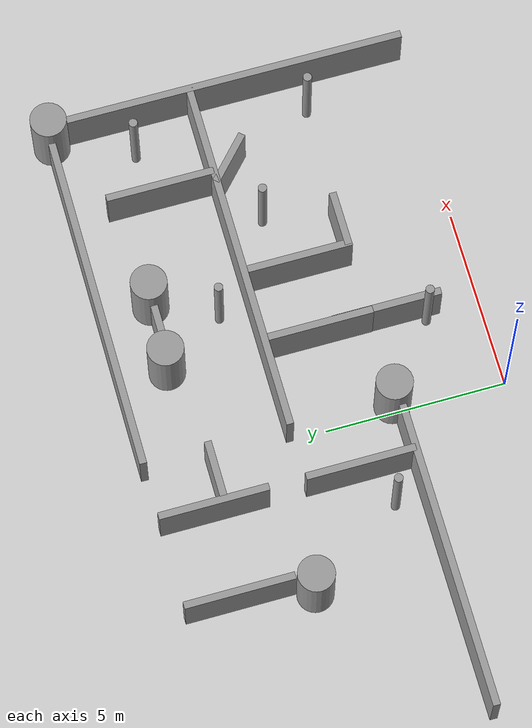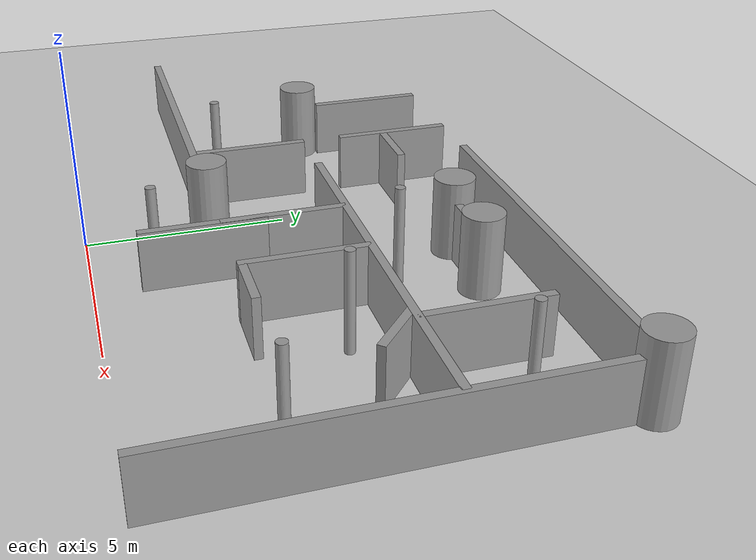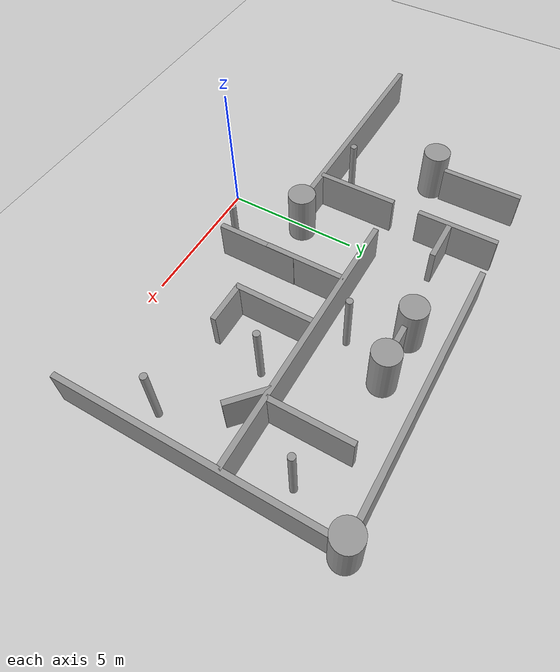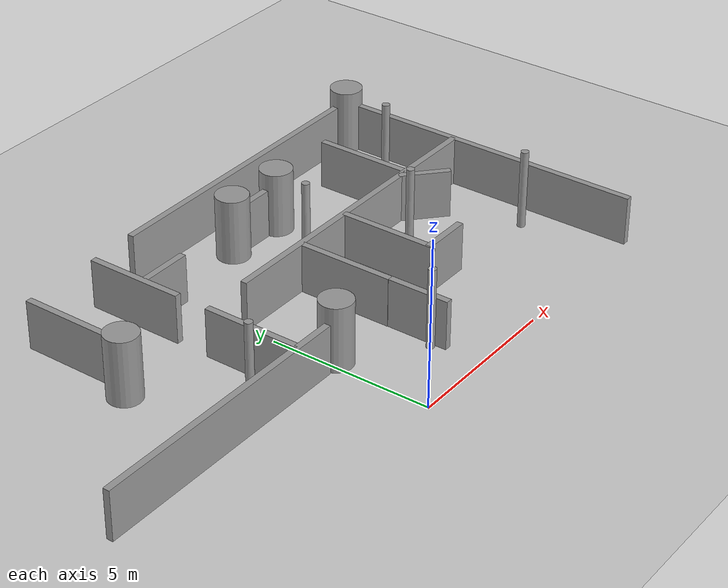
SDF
<sdf version="1.7">
 <world name="default">
  <model name="ground_plane">
   <static>1</static>
   <link name="link">
    <collision name="collision">
     <geometry><plane><normal>0 0 1</normal><size>100 100</size></plane></geometry>
     <surface><friction><ode><mu>100</mu><mu2>50</mu2></ode></friction></surface>
    </collision>
    <visual name="visual">
     <cast_shadows>0</cast_shadows>
     <geometry><plane><normal>0 0 1</normal><size>100 100</size></plane></geometry>
     <material>
      <script><uri>file://media/materials/scripts/gazebo.material</uri><name>Gazebo/Grey</name></script>
     </material>
    </visual>
   </link>
  </model>
  <model name="wall_10x3">
   <link name="link">
    <inertial>
     <mass>1</mass>
     <inertia>
      <ixx>0.166667</ixx>
      <ixy>0</ixy>
      <ixz>0</ixz>
      <iyy>0.166667</iyy>
      <iyz>0</iyz>
      <izz>0.166667</izz>
     </inertia>
    </inertial>
    <visual name="visual">
     <geometry><box><size>10 0.2 1.5</size></box></geometry>
     <material>
      <script><name>Gazebo/Grey</name><uri>file://media/materials/scripts/gazebo.material</uri></script>
      <shader type="pixel"><normal_map>__default__</normal_map></shader>
      <ambient>0.3 0.3 0.3 1</ambient>
      <diffuse>0.7 0.7 0.7 1</diffuse>
      <specular>0.01 0.01 0.01 1</specular>
      <emissive>0 0 0 1</emissive>
     </material>
    </visual>
    <collision name="collision">
     <geometry><box><size>10 0.2 1.5</size></box></geometry>
     <surface>
      <friction>
       <ode><mu>1</mu><mu2>1</mu2><fdir1>0 0 0</fdir1><slip1>0</slip1><slip2>0</slip2></ode>
       <torsional>
        <coefficient>1</coefficient>
        <patch_radius>0</patch_radius>
        <surface_radius>0</surface_radius>
        <use_patch_radius>1</use_patch_radius>
        <ode><slip>0</slip></ode>
       </torsional>
      </friction>
      <bounce><restitution_coefficient>0</restitution_coefficient><threshold>1e+06</threshold></bounce>
      <contact>
       <collide_without_contact>0</collide_without_contact>
       <collide_without_contact_bitmask>1</collide_without_contact_bitmask>
       <collide_bitmask>1</collide_bitmask>
       <ode>
        <soft_cfm>0</soft_cfm>
        <soft_erp>0.2</soft_erp>
        <kp>1e+13</kp>
        <kd>1</kd>
        <max_vel>0.01</max_vel>
        <min_depth>0</min_depth>
       </ode>
       <bullet>
        <split_impulse>1</split_impulse>
        <split_impulse_penetration_threshold>-0.01</split_impulse_penetration_threshold>
        <soft_cfm>0</soft_cfm>
        <soft_erp>0.2</soft_erp>
        <kp>1e+13</kp>
        <kd>1</kd>
       </bullet>
      </contact>
     </surface>
    </collision>
   </link>
   <static>1</static>
   <pose>5 10 0.75 0 -0 0</pose>
  </model>
  <model name="wall_10x3_clone_2">
   <link name="link">
    <inertial>
     <mass>1</mass>
     <inertia>
      <ixx>0.166667</ixx>
      <ixy>0</ixy>
      <ixz>0</ixz>
      <iyy>0.166667</iyy>
      <iyz>0</iyz>
      <izz>0.166667</izz>
     </inertia>
    </inertial>
    <visual name="visual">
     <geometry><box><size>10 0.2 1.5</size></box></geometry>
     <material>
      <script><name>Gazebo/Grey</name><uri>file://media/materials/scripts/gazebo.material</uri></script>
      <shader type="pixel"><normal_map>__default__</normal_map></shader>
      <ambient>0.3 0.3 0.3 1</ambient>
      <diffuse>0.7 0.7 0.7 1</diffuse>
      <specular>0.01 0.01 0.01 1</specular>
      <emissive>0 0 0 1</emissive>
     </material>
    </visual>
    <collision name="collision">
     <geometry><box><size>10 0.2 1.5</size></box></geometry>
     <surface>
      <friction>
       <ode><mu>1</mu><mu2>1</mu2><fdir1>0 0 0</fdir1><slip1>0</slip1><slip2>0</slip2></ode>
       <torsional>
        <coefficient>1</coefficient>
        <patch_radius>0</patch_radius>
        <surface_radius>0</surface_radius>
        <use_patch_radius>1</use_patch_radius>
        <ode><slip>0</slip></ode>
       </torsional>
      </friction>
      <bounce><restitution_coefficient>0</restitution_coefficient><threshold>1e+06</threshold></bounce>
      <contact>
       <collide_without_contact>0</collide_without_contact>
       <collide_without_contact_bitmask>1</collide_without_contact_bitmask>
       <collide_bitmask>1</collide_bitmask>
       <ode>
        <soft_cfm>0</soft_cfm>
        <soft_erp>0.2</soft_erp>
        <kp>1e+13</kp>
        <kd>1</kd>
        <max_vel>0.01</max_vel>
        <min_depth>0</min_depth>
       </ode>
       <bullet>
        <split_impulse>1</split_impulse>
        <split_impulse_penetration_threshold>-0.01</split_impulse_penetration_threshold>
        <soft_cfm>0</soft_cfm>
        <soft_erp>0.2</soft_erp>
        <kp>1e+13</kp>
        <kd>1</kd>
       </bullet>
      </contact>
     </surface>
    </collision>
   </link>
   <static>1</static>
   <pose>5 6 0.75 0 -0 0</pose>
  </model>
  <model name="wall_10x3_clone_3_clone_1">
   <link name="link">
    <inertial>
     <mass>1</mass>
     <inertia>
      <ixx>0.166667</ixx>
      <ixy>0</ixy>
      <ixz>0</ixz>
      <iyy>0.166667</iyy>
      <iyz>0</iyz>
      <izz>0.166667</izz>
     </inertia>
    </inertial>
    <visual name="visual">
     <geometry><box><size>10 0.2 1.5</size></box></geometry>
     <material>
      <script><name>Gazebo/Grey</name><uri>file://media/materials/scripts/gazebo.material</uri></script>
      <shader type="pixel"><normal_map>__default__</normal_map></shader>
      <ambient>0.3 0.3 0.3 1</ambient>
      <diffuse>0.7 0.7 0.7 1</diffuse>
      <specular>0.01 0.01 0.01 1</specular>
      <emissive>0 0 0 1</emissive>
     </material>
    </visual>
    <collision name="collision">
     <geometry><box><size>10 0.2 1.5</size></box></geometry>
     <surface>
      <friction>
       <ode><mu>1</mu><mu2>1</mu2><fdir1>0 0 0</fdir1><slip1>0</slip1><slip2>0</slip2></ode>
       <torsional>
        <coefficient>1</coefficient>
        <patch_radius>0</patch_radius>
        <surface_radius>0</surface_radius>
        <use_patch_radius>1</use_patch_radius>
        <ode><slip>0</slip></ode>
       </torsional>
      </friction>
      <bounce><restitution_coefficient>0</restitution_coefficient><threshold>1e+06</threshold></bounce>
      <contact>
       <collide_without_contact>0</collide_without_contact>
       <collide_without_contact_bitmask>1</collide_without_contact_bitmask>
       <collide_bitmask>1</collide_bitmask>
       <ode>
        <soft_cfm>0</soft_cfm>
        <soft_erp>0.2</soft_erp>
        <kp>1e+13</kp>
        <kd>1</kd>
        <max_vel>0.01</max_vel>
        <min_depth>0</min_depth>
       </ode>
       <bullet>
        <split_impulse>1</split_impulse>
        <split_impulse_penetration_threshold>-0.01</split_impulse_penetration_threshold>
        <soft_cfm>0</soft_cfm>
        <soft_erp>0.2</soft_erp>
        <kp>1e+13</kp>
        <kd>1</kd>
       </bullet>
      </contact>
     </surface>
    </collision>
   </link>
   <static>1</static>
   <pose>10 5 0.75 0 -0 1.5708</pose>
  </model>
  <model name="wall_10x3_clone_2_clone_0">
   <link name="link">
    <inertial>
     <mass>1</mass>
     <inertia>
      <ixx>0.166667</ixx>
      <ixy>0</ixy>
      <ixz>0</ixz>
      <iyy>0.166667</iyy>
      <iyz>0</iyz>
      <izz>0.166667</izz>
     </inertia>
    </inertial>
    <visual name="visual">
     <geometry><box><size>8.43878 0.2 1.5</size></box></geometry>
     <material>
      <script><name>Gazebo/Grey</name><uri>file://media/materials/scripts/gazebo.material</uri></script>
      <shader type="pixel"><normal_map>__default__</normal_map></shader>
      <ambient>0.3 0.3 0.3 1</ambient>
      <diffuse>0.7 0.7 0.7 1</diffuse>
      <specular>0.01 0.01 0.01 1</specular>
      <emissive>0 0 0 1</emissive>
     </material>
    </visual>
    <collision name="collision">
     <geometry><box><size>8.43878 0.2 1.5</size></box></geometry>
     <surface>
      <friction>
       <ode><mu>1</mu><mu2>1</mu2><fdir1>0 0 0</fdir1><slip1>0</slip1><slip2>0</slip2></ode>
       <torsional>
        <coefficient>1</coefficient>
        <patch_radius>0</patch_radius>
        <surface_radius>0</surface_radius>
        <use_patch_radius>1</use_patch_radius>
        <ode><slip>0</slip></ode>
       </torsional>
      </friction>
      <bounce><restitution_coefficient>0</restitution_coefficient><threshold>1e+06</threshold></bounce>
      <contact>
       <collide_without_contact>0</collide_without_contact>
       <collide_without_contact_bitmask>1</collide_without_contact_bitmask>
       <collide_bitmask>1</collide_bitmask>
       <ode>
        <soft_cfm>0</soft_cfm>
        <soft_erp>0.2</soft_erp>
        <kp>1e+13</kp>
        <kd>1</kd>
        <max_vel>0.01</max_vel>
        <min_depth>0</min_depth>
       </ode>
       <bullet>
        <split_impulse>1</split_impulse>
        <split_impulse_penetration_threshold>-0.01</split_impulse_penetration_threshold>
        <soft_cfm>0</soft_cfm>
        <soft_erp>0.2</soft_erp>
        <kp>1e+13</kp>
        <kd>1</kd>
       </bullet>
      </contact>
     </surface>
    </collision>
   </link>
   <static>1</static>
   <pose>-4.5 3 0.75 0 -0 0</pose>
  </model>
  <model name="wall_10x3_clone_3_clone_0_clone_clone_clone_clone_1">
   <link name="link">
    <inertial>
     <mass>1</mass>
     <inertia>
      <ixx>0.166667</ixx>
      <ixy>0</ixy>
      <ixz>0</ixz>
      <iyy>0.166667</iyy>
      <iyz>0</iyz>
      <izz>0.166667</izz>
     </inertia>
    </inertial>
    <visual name="visual">
     <geometry><box><size>3 0.2 1.5</size></box></geometry>
     <material>
      <script><name>Gazebo/Grey</name><uri>file://media/materials/scripts/gazebo.material</uri></script>
      <shader type="pixel"><normal_map>__default__</normal_map></shader>
      <ambient>0.3 0.3 0.3 1</ambient>
      <diffuse>0.7 0.7 0.7 1</diffuse>
      <specular>0.01 0.01 0.01 1</specular>
      <emissive>0 0 0 1</emissive>
     </material>
    </visual>
    <collision name="collision">
     <geometry><box><size>3 0.2 1.5</size></box></geometry>
     <surface>
      <friction>
       <ode><mu>1</mu><mu2>1</mu2><fdir1>0 0 0</fdir1><slip1>0</slip1><slip2>0</slip2></ode>
       <torsional>
        <coefficient>1</coefficient>
        <patch_radius>0</patch_radius>
        <surface_radius>0</surface_radius>
        <use_patch_radius>1</use_patch_radius>
        <ode><slip>0</slip></ode>
       </torsional>
      </friction>
      <bounce><restitution_coefficient>0</restitution_coefficient><threshold>1e+06</threshold></bounce>
      <contact>
       <collide_without_contact>0</collide_without_contact>
       <collide_without_contact_bitmask>1</collide_without_contact_bitmask>
       <collide_bitmask>1</collide_bitmask>
       <ode>
        <soft_cfm>0</soft_cfm>
        <soft_erp>0.2</soft_erp>
        <kp>1e+13</kp>
        <kd>1</kd>
        <max_vel>0.01</max_vel>
        <min_depth>0</min_depth>
       </ode>
       <bullet>
        <split_impulse>1</split_impulse>
        <split_impulse_penetration_threshold>-0.01</split_impulse_penetration_threshold>
        <soft_cfm>0</soft_cfm>
        <soft_erp>0.2</soft_erp>
        <kp>1e+13</kp>
        <kd>1</kd>
       </bullet>
      </contact>
     </surface>
    </collision>
   </link>
   <static>1</static>
   <pose>7.5 7.5 0.75 0 -0 1.5708</pose>
  </model>
  <model name="wall_10x3_clone_3_clone_0_clone_clone_clone_clone_4">
   <link name="link">
    <inertial>
     <mass>1</mass>
     <inertia>
      <ixx>0.166667</ixx>
      <ixy>0</ixy>
      <ixz>0</ixz>
      <iyy>0.166667</iyy>
      <iyz>0</iyz>
      <izz>0.166667</izz>
     </inertia>
    </inertial>
    <visual name="visual">
     <geometry><box><size>3 0.2 1.5</size></box></geometry>
     <material>
      <script><name>Gazebo/Grey</name><uri>file://media/materials/scripts/gazebo.material</uri></script>
      <shader type="pixel"><normal_map>__default__</normal_map></shader>
      <ambient>0.3 0.3 0.3 1</ambient>
      <diffuse>0.7 0.7 0.7 1</diffuse>
      <specular>0.01 0.01 0.01 1</specular>
      <emissive>0 0 0 1</emissive>
     </material>
    </visual>
    <collision name="collision">
     <geometry><box><size>3 0.2 1.5</size></box></geometry>
     <surface>
      <friction>
       <ode><mu>1</mu><mu2>1</mu2><fdir1>0 0 0</fdir1><slip1>0</slip1><slip2>0</slip2></ode>
       <torsional>
        <coefficient>1</coefficient>
        <patch_radius>0</patch_radius>
        <surface_radius>0</surface_radius>
        <use_patch_radius>1</use_patch_radius>
        <ode><slip>0</slip></ode>
       </torsional>
      </friction>
      <bounce><restitution_coefficient>0</restitution_coefficient><threshold>1e+06</threshold></bounce>
      <contact>
       <collide_without_contact>0</collide_without_contact>
       <collide_without_contact_bitmask>1</collide_without_contact_bitmask>
       <collide_bitmask>1</collide_bitmask>
       <ode>
        <soft_cfm>0</soft_cfm>
        <soft_erp>0.2</soft_erp>
        <kp>1e+13</kp>
        <kd>1</kd>
        <max_vel>0.01</max_vel>
        <min_depth>0</min_depth>
       </ode>
       <bullet>
        <split_impulse>1</split_impulse>
        <split_impulse_penetration_threshold>-0.01</split_impulse_penetration_threshold>
        <soft_cfm>0</soft_cfm>
        <soft_erp>0.2</soft_erp>
        <kp>1e+13</kp>
        <kd>1</kd>
       </bullet>
      </contact>
     </surface>
    </collision>
   </link>
   <static>1</static>
   <pose>-1.5 4.5 0.75 0 -0 1.5708</pose>
  </model>
  <model name="wall_10x3_clone_3_clone_0_clone_clone_clone_clone_5">
   <link name="link">
    <inertial>
     <mass>1</mass>
     <inertia>
      <ixx>0.166667</ixx>
      <ixy>0</ixy>
      <ixz>0</ixz>
      <iyy>0.166667</iyy>
      <iyz>0</iyz>
      <izz>0.166667</izz>
     </inertia>
    </inertial>
    <visual name="visual">
     <geometry><box><size>3 0.2 1.5</size></box></geometry>
     <material>
      <script><name>Gazebo/Grey</name><uri>file://media/materials/scripts/gazebo.material</uri></script>
      <shader type="pixel"><normal_map>__default__</normal_map></shader>
      <ambient>0.3 0.3 0.3 1</ambient>
      <diffuse>0.7 0.7 0.7 1</diffuse>
      <specular>0.01 0.01 0.01 1</specular>
      <emissive>0 0 0 1</emissive>
     </material>
    </visual>
    <collision name="collision">
     <geometry><box><size>3 0.2 1.5</size></box></geometry>
     <surface>
      <friction>
       <ode><mu>1</mu><mu2>1</mu2><fdir1>0 0 0</fdir1><slip1>0</slip1><slip2>0</slip2></ode>
       <torsional>
        <coefficient>1</coefficient>
        <patch_radius>0</patch_radius>
        <surface_radius>0</surface_radius>
        <use_patch_radius>1</use_patch_radius>
        <ode><slip>0</slip></ode>
       </torsional>
      </friction>
      <bounce><restitution_coefficient>0</restitution_coefficient><threshold>1e+06</threshold></bounce>
      <contact>
       <collide_without_contact>0</collide_without_contact>
       <collide_without_contact_bitmask>1</collide_without_contact_bitmask>
       <collide_bitmask>1</collide_bitmask>
       <ode>
        <soft_cfm>0</soft_cfm>
        <soft_erp>0.2</soft_erp>
        <kp>1e+13</kp>
        <kd>1</kd>
        <max_vel>0.01</max_vel>
        <min_depth>0</min_depth>
       </ode>
       <bullet>
        <split_impulse>1</split_impulse>
        <split_impulse_penetration_threshold>-0.01</split_impulse_penetration_threshold>
        <soft_cfm>0</soft_cfm>
        <soft_erp>0.2</soft_erp>
        <kp>1e+13</kp>
        <kd>1</kd>
       </bullet>
      </contact>
     </surface>
    </collision>
   </link>
   <static>1</static>
   <pose>-1.5 8.5 0.75 0 -0 1.5708</pose>
  </model>
  <model name="wall_10x3_clone_3_clone_0_clone_clone_clone_clone_6_clone_0">
   <link name="link">
    <inertial>
     <mass>1</mass>
     <inertia>
      <ixx>0.166667</ixx>
      <ixy>0</ixy>
      <ixz>0</ixz>
      <iyy>0.166667</iyy>
      <iyz>0</iyz>
      <izz>0.166667</izz>
     </inertia>
    </inertial>
    <visual name="visual">
     <geometry><box><size>3 0.2 1.5</size></box></geometry>
     <material>
      <script><name>Gazebo/Grey</name><uri>file://media/materials/scripts/gazebo.material</uri></script>
      <shader type="pixel"><normal_map>__default__</normal_map></shader>
      <ambient>0.3 0.3 0.3 1</ambient>
      <diffuse>0.7 0.7 0.7 1</diffuse>
      <specular>0.01 0.01 0.01 1</specular>
      <emissive>0 0 0 1</emissive>
     </material>
    </visual>
    <collision name="collision">
     <geometry><box><size>3 0.2 1.5</size></box></geometry>
     <surface>
      <friction>
       <ode><mu>1</mu><mu2>1</mu2><fdir1>0 0 0</fdir1><slip1>0</slip1><slip2>0</slip2></ode>
       <torsional>
        <coefficient>1</coefficient>
        <patch_radius>0</patch_radius>
        <surface_radius>0</surface_radius>
        <use_patch_radius>1</use_patch_radius>
        <ode><slip>0</slip></ode>
       </torsional>
      </friction>
      <bounce><restitution_coefficient>0</restitution_coefficient><threshold>1e+06</threshold></bounce>
      <contact>
       <collide_without_contact>0</collide_without_contact>
       <collide_without_contact_bitmask>1</collide_without_contact_bitmask>
       <collide_bitmask>1</collide_bitmask>
       <ode>
        <soft_cfm>0</soft_cfm>
        <soft_erp>0.2</soft_erp>
        <kp>1e+13</kp>
        <kd>1</kd>
        <max_vel>0.01</max_vel>
        <min_depth>0</min_depth>
       </ode>
       <bullet>
        <split_impulse>1</split_impulse>
        <split_impulse_penetration_threshold>-0.01</split_impulse_penetration_threshold>
        <soft_cfm>0</soft_cfm>
        <soft_erp>0.2</soft_erp>
        <kp>1e+13</kp>
        <kd>1</kd>
       </bullet>
      </contact>
     </surface>
    </collision>
   </link>
   <static>1</static>
   <pose>-4 8.5 0.75 0 -0 1.5708</pose>
  </model>
  <model name="wall_10x3_clone_3_clone_0_clone_clone_clone_clone_6_clone_4">
   <link name="link">
    <inertial>
     <mass>1</mass>
     <inertia>
      <ixx>0.166667</ixx>
      <ixy>0</ixy>
      <ixz>0</ixz>
      <iyy>0.166667</iyy>
      <iyz>0</iyz>
      <izz>0.166667</izz>
     </inertia>
    </inertial>
    <visual name="visual">
     <geometry><box><size>3 0.2 1.5</size></box></geometry>
     <material>
      <script><name>Gazebo/Grey</name><uri>file://media/materials/scripts/gazebo.material</uri></script>
      <shader type="pixel"><normal_map>__default__</normal_map></shader>
      <ambient>0.3 0.3 0.3 1</ambient>
      <diffuse>0.7 0.7 0.7 1</diffuse>
      <specular>0.01 0.01 0.01 1</specular>
      <emissive>0 0 0 1</emissive>
     </material>
    </visual>
    <collision name="collision">
     <geometry><box><size>3 0.2 1.5</size></box></geometry>
     <surface>
      <friction>
       <ode><mu>1</mu><mu2>1</mu2><fdir1>0 0 0</fdir1><slip1>0</slip1><slip2>0</slip2></ode>
       <torsional>
        <coefficient>1</coefficient>
        <patch_radius>0</patch_radius>
        <surface_radius>0</surface_radius>
        <use_patch_radius>1</use_patch_radius>
        <ode><slip>0</slip></ode>
       </torsional>
      </friction>
      <bounce><restitution_coefficient>0</restitution_coefficient><threshold>1e+06</threshold></bounce>
      <contact>
       <collide_without_contact>0</collide_without_contact>
       <collide_without_contact_bitmask>1</collide_without_contact_bitmask>
       <collide_bitmask>1</collide_bitmask>
       <ode>
        <soft_cfm>0</soft_cfm>
        <soft_erp>0.2</soft_erp>
        <kp>1e+13</kp>
        <kd>1</kd>
        <max_vel>0.01</max_vel>
        <min_depth>0</min_depth>
       </ode>
       <bullet>
        <split_impulse>1</split_impulse>
        <split_impulse_penetration_threshold>-0.01</split_impulse_penetration_threshold>
        <soft_cfm>0</soft_cfm>
        <soft_erp>0.2</soft_erp>
        <kp>1e+13</kp>
        <kd>1</kd>
       </bullet>
      </contact>
     </surface>
    </collision>
   </link>
   <static>1</static>
   <pose>2.5 4.5 0.75 0 -0 1.5708</pose>
  </model>
  <model name="wall_10x3_clone_3_clone_0_clone_clone_clone_clone_6_clone_5">
   <link name="link">
    <inertial>
     <mass>1</mass>
     <inertia>
      <ixx>0.166667</ixx>
      <ixy>0</ixy>
      <ixz>0</ixz>
      <iyy>0.166667</iyy>
      <iyz>0</iyz>
      <izz>0.166667</izz>
     </inertia>
    </inertial>
    <visual name="visual">
     <geometry><box><size>3 0.2 1.5</size></box></geometry>
     <material>
      <script><name>Gazebo/Grey</name><uri>file://media/materials/scripts/gazebo.material</uri></script>
      <shader type="pixel"><normal_map>__default__</normal_map></shader>
      <ambient>0.3 0.3 0.3 1</ambient>
      <diffuse>0.7 0.7 0.7 1</diffuse>
      <specular>0.01 0.01 0.01 1</specular>
      <emissive>0 0 0 1</emissive>
     </material>
    </visual>
    <collision name="collision">
     <geometry><box><size>3 0.2 1.5</size></box></geometry>
     <surface>
      <friction>
       <ode><mu>1</mu><mu2>1</mu2><fdir1>0 0 0</fdir1><slip1>0</slip1><slip2>0</slip2></ode>
       <torsional>
        <coefficient>1</coefficient>
        <patch_radius>0</patch_radius>
        <surface_radius>0</surface_radius>
        <use_patch_radius>1</use_patch_radius>
        <ode><slip>0</slip></ode>
       </torsional>
      </friction>
      <bounce><restitution_coefficient>0</restitution_coefficient><threshold>1e+06</threshold></bounce>
      <contact>
       <collide_without_contact>0</collide_without_contact>
       <collide_without_contact_bitmask>1</collide_without_contact_bitmask>
       <collide_bitmask>1</collide_bitmask>
       <ode>
        <soft_cfm>0</soft_cfm>
        <soft_erp>0.2</soft_erp>
        <kp>1e+13</kp>
        <kd>1</kd>
        <max_vel>0.01</max_vel>
        <min_depth>0</min_depth>
       </ode>
       <bullet>
        <split_impulse>1</split_impulse>
        <split_impulse_penetration_threshold>-0.01</split_impulse_penetration_threshold>
        <soft_cfm>0</soft_cfm>
        <soft_erp>0.2</soft_erp>
        <kp>1e+13</kp>
        <kd>1</kd>
       </bullet>
      </contact>
     </surface>
    </collision>
   </link>
   <static>1</static>
   <pose>4.5 4.5 0.75 0 -0 1.5708</pose>
  </model>
  <model name="wall_10x3_clone_3_clone_0_clone_clone_clone_clone_clone_0_clone_clone_0">
   <link name="link">
    <inertial>
     <mass>0.514545</mass>
     <inertia>
      <ixx>0.0981923</ixx>
      <ixy>0</ixy>
      <ixz>0</ixz>
      <iyy>0.198649</iyy>
      <iyz>0</iyz>
      <izz>0.103887</izz>
     </inertia>
    </inertial>
    <visual name="visual">
     <geometry><box><size>1.54363 0.2 1.5</size></box></geometry>
     <material>
      <script><name>Gazebo/Grey</name><uri>file://media/materials/scripts/gazebo.material</uri></script>
      <shader type="pixel"><normal_map>__default__</normal_map></shader>
      <ambient>0.3 0.3 0.3 1</ambient>
      <diffuse>0.7 0.7 0.7 1</diffuse>
      <specular>0.01 0.01 0.01 1</specular>
      <emissive>0 0 0 1</emissive>
     </material>
    </visual>
    <collision name="collision">
     <geometry><box><size>1.54363 0.2 1.5</size></box></geometry>
     <surface>
      <friction>
       <ode><mu>1</mu><mu2>1</mu2><fdir1>0 0 0</fdir1><slip1>0</slip1><slip2>0</slip2></ode>
       <torsional>
        <coefficient>1</coefficient>
        <patch_radius>0</patch_radius>
        <surface_radius>0</surface_radius>
        <use_patch_radius>1</use_patch_radius>
        <ode><slip>0</slip></ode>
       </torsional>
      </friction>
      <bounce><restitution_coefficient>0</restitution_coefficient><threshold>1e+06</threshold></bounce>
      <contact>
       <collide_without_contact>0</collide_without_contact>
       <collide_without_contact_bitmask>1</collide_without_contact_bitmask>
       <collide_bitmask>1</collide_bitmask>
       <ode>
        <soft_cfm>0</soft_cfm>
        <soft_erp>0.2</soft_erp>
        <kp>1e+13</kp>
        <kd>1</kd>
        <max_vel>0.01</max_vel>
        <min_depth>0</min_depth>
       </ode>
       <bullet>
        <split_impulse>1</split_impulse>
        <split_impulse_penetration_threshold>-0.01</split_impulse_penetration_threshold>
        <soft_cfm>0</soft_cfm>
        <soft_erp>0.2</soft_erp>
        <kp>1e+13</kp>
        <kd>1</kd>
       </bullet>
      </contact>
     </surface>
    </collision>
   </link>
   <static>1</static>
   <pose>5.22501 3.10077 0.75 0 -0 0</pose>
  </model>
  <model name="wall_10x3_clone_3_clone_0_clone_clone_clone_clone_clone_0_clone_clone_2">
   <link name="link">
    <inertial>
     <mass>0.514545</mass>
     <inertia>
      <ixx>0.0981923</ixx>
      <ixy>0</ixy>
      <ixz>0</ixz>
      <iyy>0.198649</iyy>
      <iyz>0</iyz>
      <izz>0.103887</izz>
     </inertia>
    </inertial>
    <visual name="visual">
     <geometry><box><size>1.54363 0.2 1.5</size></box></geometry>
     <material>
      <script><name>Gazebo/Grey</name><uri>file://media/materials/scripts/gazebo.material</uri></script>
      <shader type="pixel"><normal_map>__default__</normal_map></shader>
      <ambient>0.3 0.3 0.3 1</ambient>
      <diffuse>0.7 0.7 0.7 1</diffuse>
      <specular>0.01 0.01 0.01 1</specular>
      <emissive>0 0 0 1</emissive>
     </material>
    </visual>
    <collision name="collision">
     <geometry><box><size>1.54363 0.2 1.5</size></box></geometry>
     <surface>
      <friction>
       <ode><mu>1</mu><mu2>1</mu2><fdir1>0 0 0</fdir1><slip1>0</slip1><slip2>0</slip2></ode>
       <torsional>
        <coefficient>1</coefficient>
        <patch_radius>0</patch_radius>
        <surface_radius>0</surface_radius>
        <use_patch_radius>1</use_patch_radius>
        <ode><slip>0</slip></ode>
       </torsional>
      </friction>
      <bounce><restitution_coefficient>0</restitution_coefficient><threshold>1e+06</threshold></bounce>
      <contact>
       <collide_without_contact>0</collide_without_contact>
       <collide_without_contact_bitmask>1</collide_without_contact_bitmask>
       <collide_bitmask>1</collide_bitmask>
       <ode>
        <soft_cfm>0</soft_cfm>
        <soft_erp>0.2</soft_erp>
        <kp>1e+13</kp>
        <kd>1</kd>
        <max_vel>0.01</max_vel>
        <min_depth>0</min_depth>
       </ode>
       <bullet>
        <split_impulse>1</split_impulse>
        <split_impulse_penetration_threshold>-0.01</split_impulse_penetration_threshold>
        <soft_cfm>0</soft_cfm>
        <soft_erp>0.2</soft_erp>
        <kp>1e+13</kp>
        <kd>1</kd>
       </bullet>
      </contact>
     </surface>
    </collision>
   </link>
   <static>1</static>
   <pose>3.40561 8.57045 0.75 0 -0 0</pose>
  </model>
  <model name="wall_10x3_clone_3_clone_0_clone_clone_clone_clone_clone_0_clone_clone_3">
   <link name="link">
    <inertial>
     <mass>0.514545</mass>
     <inertia>
      <ixx>0.0981923</ixx>
      <ixy>0</ixy>
      <ixz>0</ixz>
      <iyy>0.198649</iyy>
      <iyz>0</iyz>
      <izz>0.103887</izz>
     </inertia>
    </inertial>
    <visual name="visual">
     <geometry><box><size>1.54363 0.2 1.5</size></box></geometry>
     <material>
      <script><name>Gazebo/Grey</name><uri>file://media/materials/scripts/gazebo.material</uri></script>
      <shader type="pixel"><normal_map>__default__</normal_map></shader>
      <ambient>0.3 0.3 0.3 1</ambient>
      <diffuse>0.7 0.7 0.7 1</diffuse>
      <specular>0.01 0.01 0.01 1</specular>
      <emissive>0 0 0 1</emissive>
     </material>
    </visual>
    <collision name="collision">
     <geometry><box><size>1.54363 0.2 1.5</size></box></geometry>
     <surface>
      <friction>
       <ode><mu>1</mu><mu2>1</mu2><fdir1>0 0 0</fdir1><slip1>0</slip1><slip2>0</slip2></ode>
       <torsional>
        <coefficient>1</coefficient>
        <patch_radius>0</patch_radius>
        <surface_radius>0</surface_radius>
        <use_patch_radius>1</use_patch_radius>
        <ode><slip>0</slip></ode>
       </torsional>
      </friction>
      <bounce><restitution_coefficient>0</restitution_coefficient><threshold>1e+06</threshold></bounce>
      <contact>
       <collide_without_contact>0</collide_without_contact>
       <collide_without_contact_bitmask>1</collide_without_contact_bitmask>
       <collide_bitmask>1</collide_bitmask>
       <ode>
        <soft_cfm>0</soft_cfm>
        <soft_erp>0.2</soft_erp>
        <kp>1e+13</kp>
        <kd>1</kd>
        <max_vel>0.01</max_vel>
        <min_depth>0</min_depth>
       </ode>
       <bullet>
        <split_impulse>1</split_impulse>
        <split_impulse_penetration_threshold>-0.01</split_impulse_penetration_threshold>
        <soft_cfm>0</soft_cfm>
        <soft_erp>0.2</soft_erp>
        <kp>1e+13</kp>
        <kd>1</kd>
       </bullet>
      </contact>
     </surface>
    </collision>
   </link>
   <static>1</static>
   <pose>-0.641183 8.21539 0.75 0 -0 0</pose>
  </model>
  <model name="wall_10x3_clone_3_clone_0_clone_clone_clone_clone_clone_0_clone_clone_clone_3">
   <link name="link">
    <inertial>
     <mass>0.514545</mass>
     <inertia>
      <ixx>0.0981923</ixx>
      <ixy>0</ixy>
      <ixz>0</ixz>
      <iyy>0.198649</iyy>
      <iyz>0</iyz>
      <izz>0.103887</izz>
     </inertia>
    </inertial>
    <pose>0 0 0 0 0 -0.740677</pose>
    <visual name="visual">
     <geometry><box><size>1.54363 0.2 1.5</size></box></geometry>
     <material>
      <script><name>Gazebo/Grey</name><uri>file://media/materials/scripts/gazebo.material</uri></script>
      <shader type="pixel"><normal_map>__default__</normal_map></shader>
      <ambient>0.3 0.3 0.3 1</ambient>
      <diffuse>0.7 0.7 0.7 1</diffuse>
      <specular>0.01 0.01 0.01 1</specular>
      <emissive>0 0 0 1</emissive>
     </material>
    </visual>
    <collision name="collision">
     <geometry><box><size>1.54363 0.2 1.5</size></box></geometry>
     <surface>
      <friction>
       <ode><mu>1</mu><mu2>1</mu2><fdir1>0 0 0</fdir1><slip1>0</slip1><slip2>0</slip2></ode>
       <torsional>
        <coefficient>1</coefficient>
        <patch_radius>0</patch_radius>
        <surface_radius>0</surface_radius>
        <use_patch_radius>1</use_patch_radius>
        <ode><slip>0</slip></ode>
       </torsional>
      </friction>
      <bounce><restitution_coefficient>0</restitution_coefficient><threshold>1e+06</threshold></bounce>
      <contact>
       <collide_without_contact>0</collide_without_contact>
       <collide_without_contact_bitmask>1</collide_without_contact_bitmask>
       <collide_bitmask>1</collide_bitmask>
       <ode>
        <soft_cfm>0</soft_cfm>
        <soft_erp>0.2</soft_erp>
        <kp>1e+13</kp>
        <kd>1</kd>
        <max_vel>0.01</max_vel>
        <min_depth>0</min_depth>
       </ode>
       <bullet>
        <split_impulse>1</split_impulse>
        <split_impulse_penetration_threshold>-0.01</split_impulse_penetration_threshold>
        <soft_cfm>0</soft_cfm>
        <soft_erp>0.2</soft_erp>
        <kp>1e+13</kp>
        <kd>1</kd>
       </bullet>
      </contact>
     </surface>
    </collision>
   </link>
   <static>1</static>
   <pose>7.74325 5.504 0.75 0 -0 0</pose>
  </model>
  <model name="wall_10x3_clone_3_clone_0_clone_clone_clone_clone_6_clone_4_clone_1">
   <link name="link">
    <inertial>
     <mass>1</mass>
     <inertia>
      <ixx>0.166667</ixx>
      <ixy>0</ixy>
      <ixz>0</ixz>
      <iyy>0.166667</iyy>
      <iyz>0</iyz>
      <izz>0.166667</izz>
     </inertia>
    </inertial>
    <visual name="visual">
     <geometry><box><size>3 0.2 1.5</size></box></geometry>
     <material>
      <script><name>Gazebo/Grey</name><uri>file://media/materials/scripts/gazebo.material</uri></script>
      <shader type="pixel"><normal_map>__default__</normal_map></shader>
      <ambient>0.3 0.3 0.3 1</ambient>
      <diffuse>0.7 0.7 0.7 1</diffuse>
      <specular>0.01 0.01 0.01 1</specular>
      <emissive>0 0 0 1</emissive>
     </material>
    </visual>
    <collision name="collision">
     <geometry><box><size>3 0.2 1.5</size></box></geometry>
     <surface>
      <friction>
       <ode><mu>1</mu><mu2>1</mu2><fdir1>0 0 0</fdir1><slip1>0</slip1><slip2>0</slip2></ode>
       <torsional>
        <coefficient>1</coefficient>
        <patch_radius>0</patch_radius>
        <surface_radius>0</surface_radius>
        <use_patch_radius>1</use_patch_radius>
        <ode><slip>0</slip></ode>
       </torsional>
      </friction>
      <bounce><restitution_coefficient>0</restitution_coefficient><threshold>1e+06</threshold></bounce>
      <contact>
       <collide_without_contact>0</collide_without_contact>
       <collide_without_contact_bitmask>1</collide_without_contact_bitmask>
       <collide_bitmask>1</collide_bitmask>
       <ode>
        <soft_cfm>0</soft_cfm>
        <soft_erp>0.2</soft_erp>
        <kp>1e+13</kp>
        <kd>1</kd>
        <max_vel>0.01</max_vel>
        <min_depth>0</min_depth>
       </ode>
       <bullet>
        <split_impulse>1</split_impulse>
        <split_impulse_penetration_threshold>-0.01</split_impulse_penetration_threshold>
        <soft_cfm>0</soft_cfm>
        <soft_erp>0.2</soft_erp>
        <kp>1e+13</kp>
        <kd>1</kd>
       </bullet>
      </contact>
     </surface>
    </collision>
   </link>
   <static>1</static>
   <pose>2.51074 2.60662 0.75 0 -0 1.5708</pose>
  </model>
  <model name="unit_cylinder_clone_2">
   <link name="link">
    <inertial>
     <mass>1</mass>
     <inertia><ixx>0.145833</ixx><ixy>0</ixy><ixz>0</ixz><iyy>0.145833</iyy><iyz>0</iyz><izz>0.125</izz></inertia>
    </inertial>
    <visual name="visual">
     <geometry><cylinder><radius>0.5</radius><length>2</length></cylinder></geometry>
     <material>
      <script><name>Gazebo/Grey</name><uri>file://media/materials/scripts/gazebo.material</uri></script>
      <shader type="pixel"><normal_map>__default__</normal_map></shader>
      <ambient>0.3 0.3 0.3 1</ambient>
      <diffuse>0.7 0.7 0.7 1</diffuse>
      <specular>0.01 0.01 0.01 1</specular>
      <emissive>0 0 0 1</emissive>
     </material>
    </visual>
    <collision name="collision">
     <geometry><cylinder><radius>0.5</radius><length>2</length></cylinder></geometry>
     <surface>
      <friction>
       <ode><mu>1</mu><mu2>1</mu2><fdir1>0 0 0</fdir1><slip1>0</slip1><slip2>0</slip2></ode>
       <torsional>
        <coefficient>1</coefficient>
        <patch_radius>0</patch_radius>
        <surface_radius>0</surface_radius>
        <use_patch_radius>1</use_patch_radius>
        <ode><slip>0</slip></ode>
       </torsional>
      </friction>
      <bounce><restitution_coefficient>0</restitution_coefficient><threshold>1e+06</threshold></bounce>
      <contact>
       <collide_without_contact>0</collide_without_contact>
       <collide_without_contact_bitmask>1</collide_without_contact_bitmask>
       <collide_bitmask>1</collide_bitmask>
       <ode>
        <soft_cfm>0</soft_cfm>
        <soft_erp>0.2</soft_erp>
        <kp>1e+13</kp>
        <kd>1</kd>
        <max_vel>0.01</max_vel>
        <min_depth>0</min_depth>
       </ode>
       <bullet>
        <split_impulse>1</split_impulse>
        <split_impulse_penetration_threshold>-0.01</split_impulse_penetration_threshold>
        <soft_cfm>0</soft_cfm>
        <soft_erp>0.2</soft_erp>
        <kp>1e+13</kp>
        <kd>1</kd>
       </bullet>
      </contact>
     </surface>
    </collision>
   </link>
   <static>0</static>
   <pose>2.76486 8.63191 0.999997 0 -0 -6e-06</pose>
  </model>
  <model name="unit_cylinder_clone_3">
   <link name="link">
    <inertial>
     <mass>1</mass>
     <inertia><ixx>0.145833</ixx><ixy>0</ixy><ixz>0</ixz><iyy>0.145833</iyy><iyz>0</iyz><izz>0.125</izz></inertia>
    </inertial>
    <visual name="visual">
     <geometry><cylinder><radius>0.5</radius><length>2</length></cylinder></geometry>
     <material>
      <script><name>Gazebo/Grey</name><uri>file://media/materials/scripts/gazebo.material</uri></script>
      <shader type="pixel"><normal_map>__default__</normal_map></shader>
      <ambient>0.3 0.3 0.3 1</ambient>
      <diffuse>0.7 0.7 0.7 1</diffuse>
      <specular>0.01 0.01 0.01 1</specular>
      <emissive>0 0 0 1</emissive>
     </material>
    </visual>
    <collision name="collision">
     <geometry><cylinder><radius>0.5</radius><length>2</length></cylinder></geometry>
     <surface>
      <friction>
       <ode><mu>1</mu><mu2>1</mu2><fdir1>0 0 0</fdir1><slip1>0</slip1><slip2>0</slip2></ode>
       <torsional>
        <coefficient>1</coefficient>
        <patch_radius>0</patch_radius>
        <surface_radius>0</surface_radius>
        <use_patch_radius>1</use_patch_radius>
        <ode><slip>0</slip></ode>
       </torsional>
      </friction>
      <bounce><restitution_coefficient>0</restitution_coefficient><threshold>1e+06</threshold></bounce>
      <contact>
       <collide_without_contact>0</collide_without_contact>
       <collide_without_contact_bitmask>1</collide_without_contact_bitmask>
       <collide_bitmask>1</collide_bitmask>
       <ode>
        <soft_cfm>0</soft_cfm>
        <soft_erp>0.2</soft_erp>
        <kp>1e+13</kp>
        <kd>1</kd>
        <max_vel>0.01</max_vel>
        <min_depth>0</min_depth>
       </ode>
       <bullet>
        <split_impulse>1</split_impulse>
        <split_impulse_penetration_threshold>-0.01</split_impulse_penetration_threshold>
        <soft_cfm>0</soft_cfm>
        <soft_erp>0.2</soft_erp>
        <kp>1e+13</kp>
        <kd>1</kd>
       </bullet>
      </contact>
     </surface>
    </collision>
   </link>
   <static>0</static>
   <pose>4.67748 8.56975 0.999997 -0 -0 -7e-06</pose>
  </model>
  <model name="unit_cylinder_clone_5">
   <link name="link">
    <inertial>
     <mass>1</mass>
     <inertia><ixx>0.145833</ixx><ixy>0</ixy><ixz>0</ixz><iyy>0.145833</iyy><iyz>0</iyz><izz>0.125</izz></inertia>
    </inertial>
    <visual name="visual">
     <geometry><cylinder><radius>0.5</radius><length>2</length></cylinder></geometry>
     <material>
      <script><name>Gazebo/Grey</name><uri>file://media/materials/scripts/gazebo.material</uri></script>
      <shader type="pixel"><normal_map>__default__</normal_map></shader>
      <ambient>0.3 0.3 0.3 1</ambient>
      <diffuse>0.7 0.7 0.7 1</diffuse>
      <specular>0.01 0.01 0.01 1</specular>
      <emissive>0 0 0 1</emissive>
     </material>
    </visual>
    <collision name="collision">
     <geometry><cylinder><radius>0.5</radius><length>2</length></cylinder></geometry>
     <surface>
      <friction>
       <ode><mu>1</mu><mu2>1</mu2><fdir1>0 0 0</fdir1><slip1>0</slip1><slip2>0</slip2></ode>
       <torsional>
        <coefficient>1</coefficient>
        <patch_radius>0</patch_radius>
        <surface_radius>0</surface_radius>
        <use_patch_radius>1</use_patch_radius>
        <ode><slip>0</slip></ode>
       </torsional>
      </friction>
      <bounce><restitution_coefficient>0</restitution_coefficient><threshold>1e+06</threshold></bounce>
      <contact>
       <collide_without_contact>0</collide_without_contact>
       <collide_without_contact_bitmask>1</collide_without_contact_bitmask>
       <collide_bitmask>1</collide_bitmask>
       <ode>
        <soft_cfm>0</soft_cfm>
        <soft_erp>0.2</soft_erp>
        <kp>1e+13</kp>
        <kd>1</kd>
        <max_vel>0.01</max_vel>
        <min_depth>0</min_depth>
       </ode>
       <bullet>
        <split_impulse>1</split_impulse>
        <split_impulse_penetration_threshold>-0.01</split_impulse_penetration_threshold>
        <soft_cfm>0</soft_cfm>
        <soft_erp>0.2</soft_erp>
        <kp>1e+13</kp>
        <kd>1</kd>
       </bullet>
      </contact>
     </surface>
    </collision>
   </link>
   <static>0</static>
   <pose>9.92942 9.95044 0.999997 0 -0 -6e-06</pose>
  </model>
  <model name="unit_cylinder_clone_6">
   <link name="link">
    <inertial>
     <mass>1</mass>
     <inertia><ixx>0.145833</ixx><ixy>0</ixy><ixz>0</ixz><iyy>0.145833</iyy><iyz>0</iyz><izz>0.125</izz></inertia>
    </inertial>
    <visual name="visual">
     <geometry><cylinder><radius>0.5</radius><length>2</length></cylinder></geometry>
     <material>
      <script><name>Gazebo/Grey</name><uri>file://media/materials/scripts/gazebo.material</uri></script>
      <shader type="pixel"><normal_map>__default__</normal_map></shader>
      <ambient>0.3 0.3 0.3 1</ambient>
      <diffuse>0.7 0.7 0.7 1</diffuse>
      <specular>0.01 0.01 0.01 1</specular>
      <emissive>0 0 0 1</emissive>
     </material>
    </visual>
    <collision name="collision">
     <geometry><cylinder><radius>0.5</radius><length>2</length></cylinder></geometry>
     <surface>
      <friction>
       <ode><mu>1</mu><mu2>1</mu2><fdir1>0 0 0</fdir1><slip1>0</slip1><slip2>0</slip2></ode>
       <torsional>
        <coefficient>1</coefficient>
        <patch_radius>0</patch_radius>
        <surface_radius>0</surface_radius>
        <use_patch_radius>1</use_patch_radius>
        <ode><slip>0</slip></ode>
       </torsional>
      </friction>
      <bounce><restitution_coefficient>0</restitution_coefficient><threshold>1e+06</threshold></bounce>
      <contact>
       <collide_without_contact>0</collide_without_contact>
       <collide_without_contact_bitmask>1</collide_without_contact_bitmask>
       <collide_bitmask>1</collide_bitmask>
       <ode>
        <soft_cfm>0</soft_cfm>
        <soft_erp>0.2</soft_erp>
        <kp>1e+13</kp>
        <kd>1</kd>
        <max_vel>0.01</max_vel>
        <min_depth>0</min_depth>
       </ode>
       <bullet>
        <split_impulse>1</split_impulse>
        <split_impulse_penetration_threshold>-0.01</split_impulse_penetration_threshold>
        <soft_cfm>0</soft_cfm>
        <soft_erp>0.2</soft_erp>
        <kp>1e+13</kp>
        <kd>1</kd>
       </bullet>
      </contact>
     </surface>
    </collision>
   </link>
   <static>0</static>
   <pose>-4.23843 6.51345 0.999995 0 -0 0.009373</pose>
  </model>
  <model name="unit_cylinder_clone_14">
   <link name="link">
    <inertial>
     <mass>1</mass>
     <inertia><ixx>0.145833</ixx><ixy>0</ixy><ixz>0</ixz><iyy>0.145833</iyy><iyz>0</iyz><izz>0.125</izz></inertia>
    </inertial>
    <visual name="visual">
     <geometry><cylinder><radius>0.5</radius><length>2</length></cylinder></geometry>
     <material>
      <script><name>Gazebo/Grey</name><uri>file://media/materials/scripts/gazebo.material</uri></script>
      <shader type="pixel"><normal_map>__default__</normal_map></shader>
      <ambient>0.3 0.3 0.3 1</ambient>
      <diffuse>0.7 0.7 0.7 1</diffuse>
      <specular>0.01 0.01 0.01 1</specular>
      <emissive>0 0 0 1</emissive>
     </material>
    </visual>
    <collision name="collision">
     <geometry><cylinder><radius>0.5</radius><length>2</length></cylinder></geometry>
     <surface>
      <friction>
       <ode><mu>1</mu><mu2>1</mu2><fdir1>0 0 0</fdir1><slip1>0</slip1><slip2>0</slip2></ode>
       <torsional>
        <coefficient>1</coefficient>
        <patch_radius>0</patch_radius>
        <surface_radius>0</surface_radius>
        <use_patch_radius>1</use_patch_radius>
        <ode><slip>0</slip></ode>
       </torsional>
      </friction>
      <bounce><restitution_coefficient>0</restitution_coefficient><threshold>1e+06</threshold></bounce>
      <contact>
       <collide_without_contact>0</collide_without_contact>
       <collide_without_contact_bitmask>1</collide_without_contact_bitmask>
       <collide_bitmask>1</collide_bitmask>
       <ode>
        <soft_cfm>0</soft_cfm>
        <soft_erp>0.2</soft_erp>
        <kp>1e+13</kp>
        <kd>1</kd>
        <max_vel>0.01</max_vel>
        <min_depth>0</min_depth>
       </ode>
       <bullet>
        <split_impulse>1</split_impulse>
        <split_impulse_penetration_threshold>-0.01</split_impulse_penetration_threshold>
        <soft_cfm>0</soft_cfm>
        <soft_erp>0.2</soft_erp>
        <kp>1e+13</kp>
        <kd>1</kd>
       </bullet>
      </contact>
     </surface>
    </collision>
   </link>
   <static>0</static>
   <pose>0.219398 3.0919 0.999993 0 -0 1e-05</pose>
  </model>
  <model name="unit_cylinder_0_clone_9">
   <pose>2.29051 1.52047 1.23089 0 0 -0.032175</pose>
   <link name="link">
    <inertial>
     <mass>1</mass>
     <inertia><ixx>0.145833</ixx><ixy>0</ixy><ixz>0</ixz><iyy>0.145833</iyy><iyz>0</iyz><izz>0.125</izz></inertia>
    </inertial>
    <collision name="collision">
     <geometry><cylinder><radius>0.120231</radius><length>2.46178</length></cylinder></geometry>
    </collision>
    <visual name="visual">
     <geometry><cylinder><radius>0.120231</radius><length>2.46178</length></cylinder></geometry>
     <material>
      <script><name>Gazebo/Grey</name><uri>file://media/materials/scripts/gazebo.material</uri></script>
     </material>
    </visual>
   </link>
  </model>
  <model name="unit_cylinder_0_clone_10">
   <pose>6.26152 4.98702 1.23088 0 0 -0.033048</pose>
   <link name="link">
    <inertial>
     <mass>1</mass>
     <inertia><ixx>0.145833</ixx><ixy>0</ixy><ixz>0</ixz><iyy>0.145833</iyy><iyz>0</iyz><izz>0.125</izz></inertia>
    </inertial>
    <collision name="collision">
     <geometry><cylinder><radius>0.120231</radius><length>2.46178</length></cylinder></geometry>
    </collision>
    <visual name="visual">
     <geometry><cylinder><radius>0.120231</radius><length>2.46178</length></cylinder></geometry>
     <material>
      <script><name>Gazebo/Grey</name><uri>file://media/materials/scripts/gazebo.material</uri></script>
     </material>
    </visual>
   </link>
  </model>
  <model name="unit_cylinder_0_clone_11">
   <pose>9.03555 2.94144 1.23089 0 0 -0.030207</pose>
   <link name="link">
    <inertial>
     <mass>1</mass>
     <inertia><ixx>0.145833</ixx><ixy>0</ixy><ixz>0</ixz><iyy>0.145833</iyy><iyz>0</iyz><izz>0.125</izz></inertia>
    </inertial>
    <collision name="collision">
     <geometry><cylinder><radius>0.120231</radius><length>2.46178</length></cylinder></geometry>
    </collision>
    <visual name="visual">
     <geometry><cylinder><radius>0.120231</radius><length>2.46178</length></cylinder></geometry>
     <material>
      <script><name>Gazebo/Grey</name><uri>file://media/materials/scripts/gazebo.material</uri></script>
     </material>
    </visual>
   </link>
  </model>
  <model name="unit_cylinder_0_clone_12">
   <pose>9.01813 7.80682 1.23089 0 0 -0.032017</pose>
   <link name="link">
    <inertial>
     <mass>1</mass>
     <inertia><ixx>0.145833</ixx><ixy>0</ixy><ixz>0</ixz><iyy>0.145833</iyy><iyz>0</iyz><izz>0.125</izz></inertia>
    </inertial>
    <collision name="collision">
     <geometry><cylinder><radius>0.120231</radius><length>2.46178</length></cylinder></geometry>
    </collision>
    <visual name="visual">
     <geometry><cylinder><radius>0.120231</radius><length>2.46178</length></cylinder></geometry>
     <material>
      <script><name>Gazebo/Grey</name><uri>file://media/materials/scripts/gazebo.material</uri></script>
     </material>
    </visual>
   </link>
  </model>
  <model name="unit_cylinder_0_clone_13">
   <pose>3.86332 6.86798 1.23089 0 0 -0.0323</pose>
   <link name="link">
    <inertial>
     <mass>1</mass>
     <inertia><ixx>0.145833</ixx><ixy>0</ixy><ixz>0</ixz><iyy>0.145833</iyy><iyz>0</iyz><izz>0.125</izz></inertia>
    </inertial>
    <collision name="collision">
     <geometry><cylinder><radius>0.120231</radius><length>2.46178</length></cylinder></geometry>
    </collision>
    <visual name="visual">
     <geometry><cylinder><radius>0.120231</radius><length>2.46178</length></cylinder></geometry>
     <material>
      <script><name>Gazebo/Grey</name><uri>file://media/materials/scripts/gazebo.material</uri></script>
     </material>
    </visual>
   </link>
  </model>
  <model name="unit_cylinder_0_clone_14">
   <pose>-2.48405 3.80202 1.23089 0 0 -0.031553</pose>
   <link name="link">
    <inertial>
     <mass>1</mass>
     <inertia><ixx>0.145833</ixx><ixy>0</ixy><ixz>0</ixz><iyy>0.145833</iyy><iyz>0</iyz><izz>0.125</izz></inertia>
    </inertial>
    <collision name="collision">
     <geometry><cylinder><radius>0.120231</radius><length>2.46178</length></cylinder></geometry>
    </collision>
    <visual name="visual">
     <geometry><cylinder><radius>0.120231</radius><length>2.46178</length></cylinder></geometry>
     <material>
      <script><name>Gazebo/Grey</name><uri>file://media/materials/scripts/gazebo.material</uri></script>
     </material>
    </visual>
   </link>
  </model>
 </world>
</sdf>
